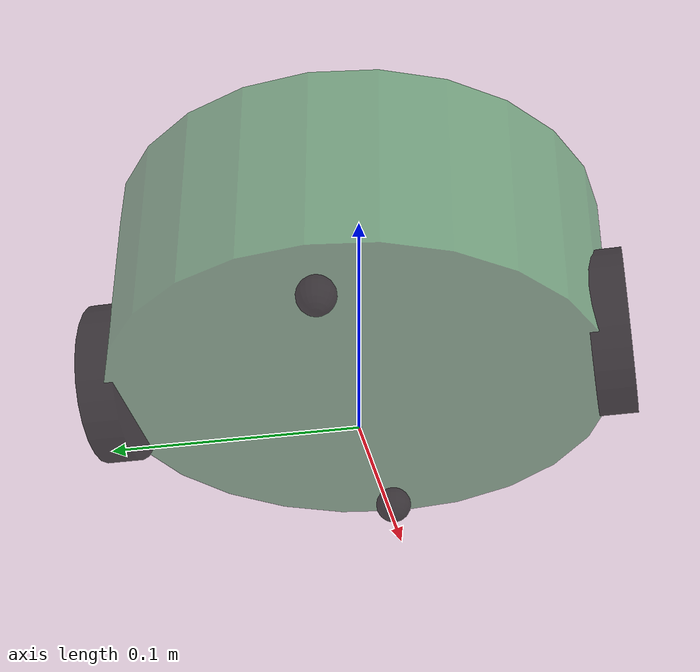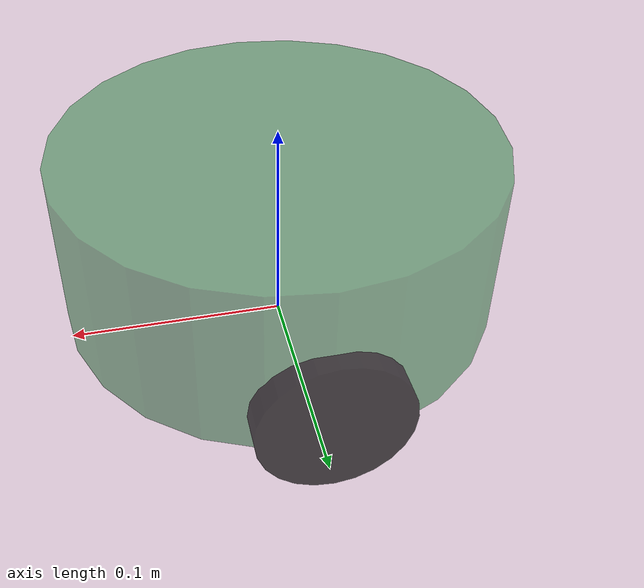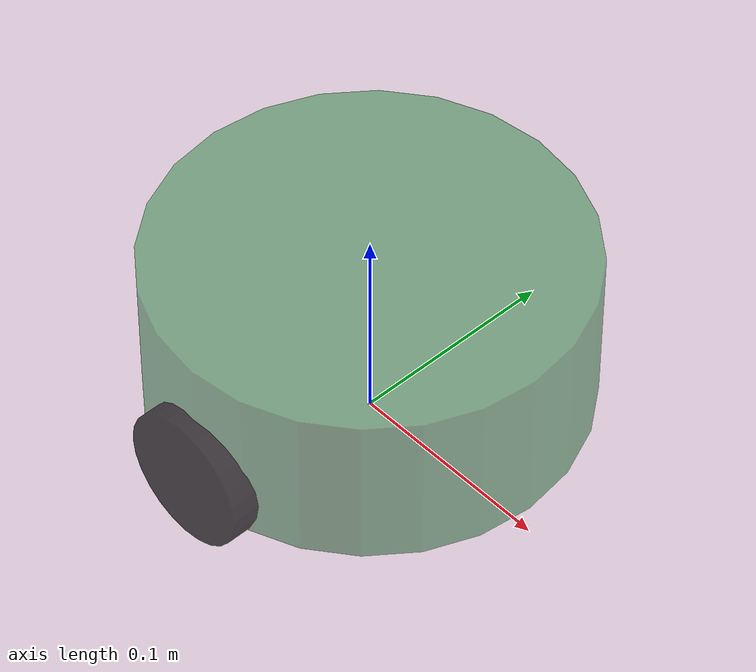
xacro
<robot name="my_base" xmlns:xacro="http://www.ros.org/wiki/xacro">
    <!-- 封装变量、常量 -->
    <xacro:property name="PI" value="3.14159265358979323846" />
    <!-- 宏:黑色设置 -->
    <material name="black">
      <color rgba="0.0 0.0 0.0 0.5" />
    </material>

    <!-- 0.添加 base_footprint -->
    <xacro:property name="base_footprint_radius" value="0.001" /> <!-- base_footprint 半径  -->
    <link name="base_footprint">
      <visual>
        <geometry>
          <sphere radius="${base_footprint_radius}" />
        </geometry>
      </visual>
    </link>

    <!-- 1.底盘 -->
    <!-- 1-1.添加底盘 -->
    <!--
      形状: 圆柱
        半径：0.1m
        高度: 0.08m
        离地: 0.015m
        重量：2kg
      -->
    <!-- 底盘属性封装 -->
    <xacro:property name="base_link_radius" value="0.1" /> <!-- base_link 半径 -->
    <xacro:property name="base_link_length" value="0.08" /> <!-- base_link 高度 -->
    <xacro:property name="base_link_mass" value="2" /> <!-- base_link 重量 -->
    <xacro:property name="earth_space" value="0.015" /> <!-- 离地间距 -->
    <xacro:property name="base_joint_z" value="${base_link_length / 2 + earth_space}" />

    <!-- 1-2.底盘link -->
    <link name="base_link">

      <visual>
        <geometry>
          <cylinder radius="${base_link_radius}" length="${base_link_length}" />
        </geometry>
        <origin xyz="0.0 0.0 0.0" rpy="0.0 0.0 0.0" />
        <material name="base_link_color">
          <color rgba="0.1 0.5 0.2 0.5" />
        </material>
      </visual>

      <collision>
        <geometry>
          <cylinder radius="${base_link_radius}" length="${base_link_length}" />
        </geometry>
        <origin xyz="0.0 0.0 0.0" rpy="0.0 0.0 0.0" />
        <!--
          这段代码的作用是定义与ODE物理引擎相关的接触参数。
          其中，"min_depth"参数定义了碰撞体间最小的深度距离，
          即当两个碰撞体之间的距离小于该值时，将被认为发生了碰撞。
        -->
        <contact>
          <ode>
            <min_depth>0.001</min_depth>
          </ode>
        </contact>
      </collision>

      <!-- 调用惯性矩阵函数 -->
      <xacro:cylinder_inertial_matrix m="${base_link_mass}" r="${base_link_radius}"
        h="${base_link_length}" />

    </link>

    <!-- 1-2.底盘joint -->
    <joint name="base_link2base_footprint" type="fixed">
      <parent link="base_footprint" />
      <child link="base_link" />
      <origin xyz="0 0 ${base_joint_z}" rpy="0.0 0.0 0.0" />
    </joint>

    <!-- 1-3.gezebo底盘颜色设置标签 -->
    <gazebo reference="base_link">
      <material>Gazebo/Yellow</material>
    </gazebo>
    <!-- 2.添加驱动轮 -->
    <!--
          形状: 圆柱
          半径: 0.0325m
          厚度: 0.015m
      -->
    <!-- 2-1.驱动轮属性封装 -->
    <xacro:property name="wheel_radius" value="0.0325" /><!-- 半径 -->
    <xacro:property name="wheel_length" value="0.015" /><!-- 宽度 -->
    <xacro:property name="wheel_mass" value="0.05" /><!-- 质量 -->
    <!-- 注意: 结果是负数 -->
    <xacro:property name="wheel_joint_z"
      value="${ -(earth_space + base_link_length / 2 - wheel_radius) }" />

    <!-- 2-2.驱动轮宏实现 -->
    <!-- 函数封装(方便调用) 底盘就一个不需要调用 而驱动论有两个要调用两次 -->
    <!--
          wheel_name: left 或 right
          flag： 1 或 -1
      -->
    <xacro:macro name="wheel_func" params="wheel_name flag">
      <!-- 2-2-1.驱动轮link -->
      <link name="${wheel_name}_wheel_link">

        <visual>
          <geometry>
            <cylinder radius="${wheel_radius}" length="${wheel_length}" />
          </geometry>
          <origin xyz="0.0 0.0 0.0" rpy="${PI / 2} 0.0 0.0" />
          <material name="wheel_color">
            <color rgba="0 0 0 0.7" />
          </material>
        </visual>

        <collision>
          <geometry>
            <cylinder radius="${wheel_radius}" length="${wheel_length}" />
          </geometry>
          <origin xyz="0.0 0.0 0.0" rpy="${PI / 2} 0.0 0.0" />
        </collision>

        <xacro:cylinder_inertial_matrix m="${wheel_mass}" r="${wheel_radius}" h="${wheel_length}" />

      </link>

      <!-- gezebo自己的颜色设置标签 -->
      <gazebo reference="${wheel_name}_wheel_link">
        <material>Gazebo/Red</material>
      </gazebo>

      <!-- 2-2-2.驱动轮joint -->
      <joint name="${wheel_name}_wheel_joint" type="continuous">
        <parent link="base_link" />
        <child link="${wheel_name}_wheel_link" />
        <!--
          x 无偏移
          y 车体半径
          z z = 车体高度/2 + 离地间距 - 车轮半径 记得加负号是负值
        -->
        <origin
          xyz="0 ${flag * base_link_radius} ${wheel_joint_z}" rpy="0.0 0.0 0.0" />
        <axis xyz="0 1 0" />
      </joint>
    </xacro:macro>
    <!-- 2-3.调用宏 -->
    <xacro:wheel_func wheel_name="base_l" flag="1" />
    <xacro:wheel_func wheel_name="base_r" flag="-1" />
    <!-- 3.支撑轮 -->
    <!--
      形状: 球
      半径:0.0075m
    -->
    <!-- 3-1.支撑轮属性封装 -->
    <xacro:property name="support_wheel_radius" value="0.0075" /> <!-- 支撑轮半径 -->
    <xacro:property name="support_wheel_mass" value="0.01" /> <!-- 支撑轮重量 -->
    <!-- 注意: 结果是负数 -->
    <xacro:property name="support_joint_z"
      value="${ (base_link_length / 2 + earth_space - support_wheel_radius) * -1 }" />
    <!-- 3-2.支撑轮宏实现 -->
    <xacro:macro name="support_wheel_func" params="support_wheel_name flag">
      <!-- 3-2-1.支撑轮link -->
      <link name="${support_wheel_name}_wheel">
        <visual>
          <geometry>
            <sphere radius="${support_wheel_radius}" />
          </geometry>
          <origin xyz="0.0 0.0 0.0" rpy="0.0 0.0 0.0" />
          <material name="wheel_color">
            <color rgba="0 0 0 0.7" />
          </material>
        </visual>
        <collision>
          <geometry>
            <sphere radius="${support_wheel_radius}" />
          </geometry>
          <origin xyz="0.0 0.0 0.0" rpy="0.0 0.0 0.0" />
        </collision>
        <xacro:sphere_inertial_matrix m="${support_wheel_mass}" r="${support_wheel_radius}" />
      </link>
      <!-- gezebo自己的颜色设置标签 -->
      <gazebo reference="${support_wheel_name}_wheel">
        <material>Gazebo/Red</material>
      </gazebo>
      <!-- 3-2-2.支撑轮joint -->
      <joint name="${support_wheel_name}_wheel2base_link" type="continuous">
        <parent link="base_link" />
        <child link="${support_wheel_name}_wheel" />
        <!--
            x 相对底盘中心0.08
            y 无偏移
            z z = 车体高度/2 + 离地间距 - 万向车轮半径 记得加负号是负值
        -->
        <origin
          xyz="${flag * 0.08} 0 ${support_joint_z}" />
        <axis xyz="1 1 1" />
      </joint>
    </xacro:macro>

    <xacro:support_wheel_func support_wheel_name="front" flag="1" />
    <xacro:support_wheel_func support_wheel_name="back" flag="-1" />

  </robot>
